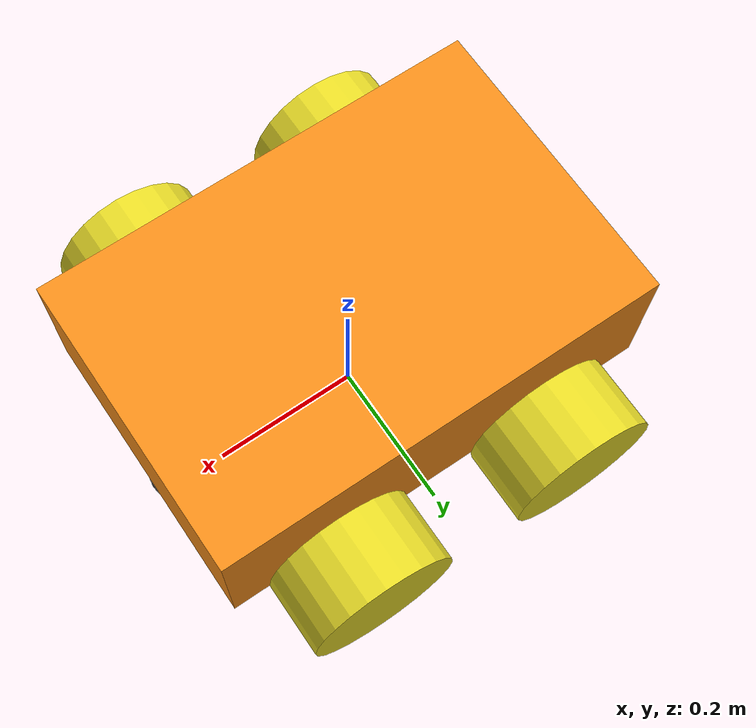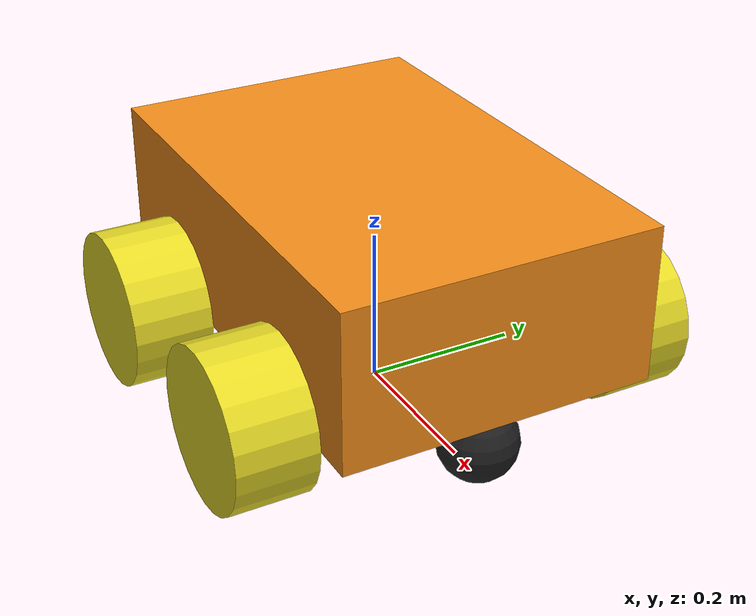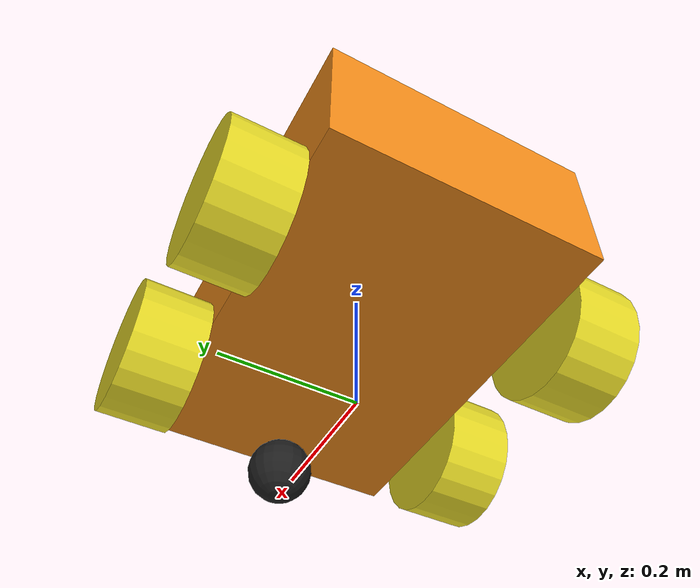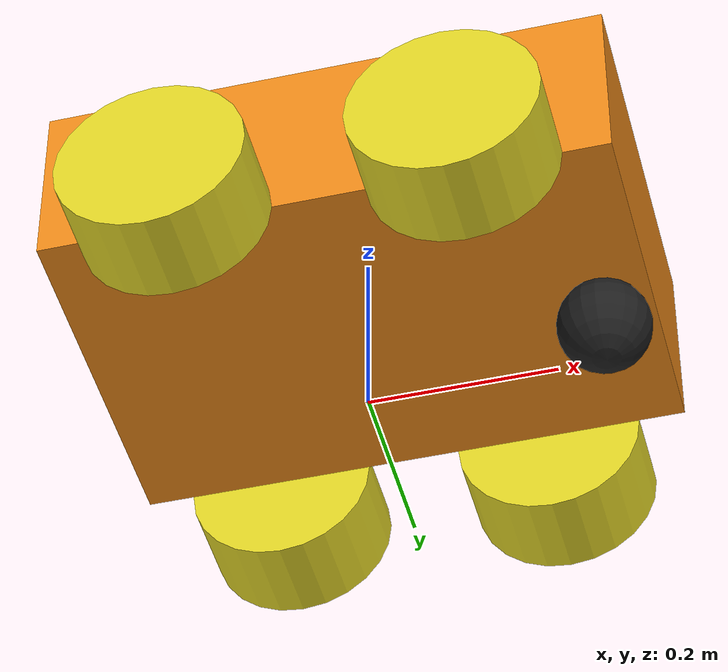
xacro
<?xml version="1.0"?>
<robot xmlns:xacro="http://www.ros.org/wiki/xacro">
    <xacro:property name="base_length" value="0.6"/>
    <xacro:property name="base_width" value="0.4"/>
    <xacro:property name="base_height" value="0.2"/>
    <xacro:property name="wheel_radius" value="0.1"/>
    <xacro:property name="wheel_length" value="0.1"/>

    <xacro:macro name="wheel_link" params="where prefix">
        <link name="${where}_${prefix}_wheel_link">
            <visual>
                <geometry>
                    <cylinder radius="${wheel_radius}" length="${wheel_length}"/>
                </geometry>
                <origin xyz="0 0 0" rpy="${pi/2} 0 0"/>
                <material name="yellow"/>
            </visual>
            <collision>
                <geometry>
                    <cylinder radius="${wheel_radius}" length="${wheel_length}"/>
                </geometry>
                <origin xyz="0 0 0" rpy="${pi/2} 0 0"/>
            </collision>
            <xacro:wheel_inertia r="${wheel_radius}" h="${wheel_length}" m="5.0" xyz="0 0 0" rpy="${pi/2} 0 0" />
        </link>
    </xacro:macro>

    <link name="base_link"/>

    <link name="main_link">
        <visual>
            <geometry>
                <box size="${base_length} ${base_width} ${base_height}"/>
            </geometry>
            <origin xyz="0 0 0.1" rpy="0 0 0"/>
            <material name="orange"/>
        </visual>
        <collision>
            <geometry>
                <box size="${base_length} ${base_width} ${base_height}"/>
            </geometry>
            <origin xyz="0 0 0.1" rpy="0 0 0"/>
        </collision>
        <xacro:box_inertia l="${base_length}" w="${base_width}" h="${base_height}" m="35" xyz="0 0 0.1" rpy="0 0 0"/>
    </link>

    <xacro:wheel_link where="back" prefix="left"/>
    <xacro:wheel_link where="back" prefix="right"/>
    <xacro:wheel_link where="front" prefix="left"/>
    <xacro:wheel_link where="front" prefix="right"/>

    <link name="front_wheel_link">
        <visual>
            <geometry>
                <sphere radius="0.05"/>
            </geometry>
            <origin xyz="0 0 0" rpy="0 0 0"/>
            <material name="black"/>
        </visual>
        <collision>
            <geometry>
                <sphere radius="0.05"/>
            </geometry>
            <origin xyz="0 0 0" rpy="0 0 0"/>
        </collision>
        <xacro:sphere_inertia m="2.0" r="0.05" xyz="0 0 0" rpy="0 0 0" />
    </link>

    <!-- JOINTS -->
    <joint name="base_footprint_to_base" type="fixed">
        <parent link="base_link"/>
        <child link="main_link"/>
        <origin xyz="0 0 ${wheel_radius}" rpy="0 0 0"/>
    </joint>

    <!-- Back wheels - these are the driving wheels -->
    <joint name="base_to_back_right_wheel_joint" type="continuous">
        <parent link="main_link"/>
        <child link="back_right_wheel_link"/>
        <origin xyz="-0.15 -${(base_width/2) + (wheel_length/2)} 0" rpy="0 0 0"/>
        <axis xyz="0 1 0"/>
    </joint>

    <joint name="base_to_back_left_wheel_joint" type="continuous">
        <parent link="main_link"/>
        <child link="back_left_wheel_link"/>
        <origin xyz="-0.15 ${(base_width/2) + (wheel_length/2)} 0" rpy="0 0 0"/>
        <axis xyz="0 1 0"/>
    </joint>

    <joint name="base_to_front_right_wheel_joint" type="continuous">
        <parent link="main_link"/>
        <child link="front_right_wheel_link"/>
        <origin xyz="0.15 -${(base_width/2) + (wheel_length/2)} 0" rpy="0 0 0"/>
        <axis xyz="0 1 0"/>
    </joint>

    <joint name="base_to_front_left_wheel_joint" type="continuous">
        <parent link="main_link"/>
        <child link="front_left_wheel_link"/>
        <origin xyz="0.15 ${(base_width/2) + (wheel_length/2)} 0" rpy="0 0 0"/>
        <axis xyz="0 1 0"/>
    </joint>

    <!-- Front caster wheel -->
    <joint name="base_to_front_wheel_joint" type="fixed">
        <parent link="main_link"/>
        <child link="front_wheel_link"/>
        <origin xyz="${base_length/2 - 0.05} 0 -${wheel_radius/2}" rpy="0 0 0"/>
    </joint>
</robot>
